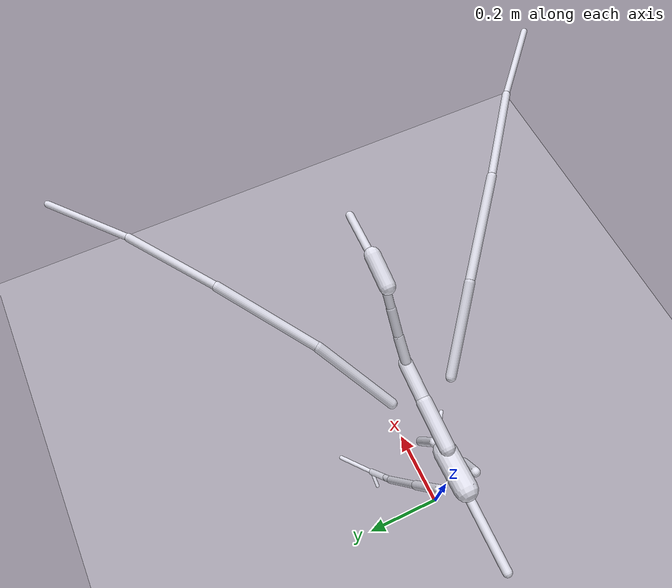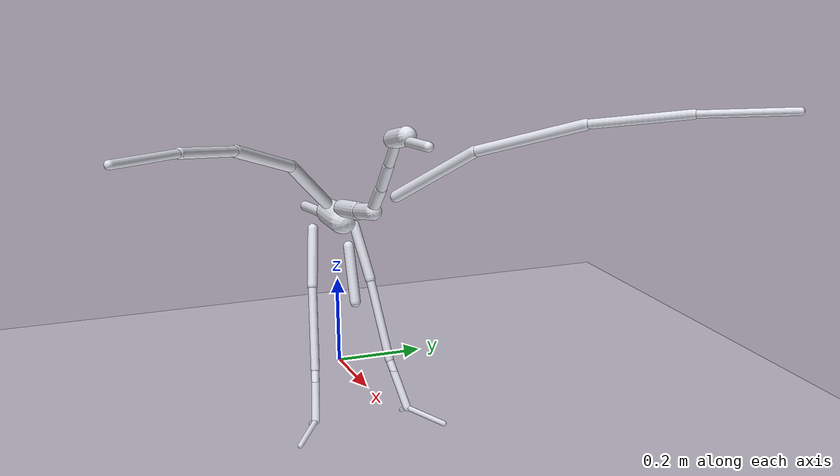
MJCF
<mujoco model="raven_scene">
  <include file="raven_robot.xml"/>

  <visual>
    <global offwidth="3840" offheight="2160" azimuth="90" elevation="-10"/>
    <quality shadowsize="4096" offsamples="16"/>
    <headlight ambient="0.4 0.4 0.4" diffuse="0.8 0.8 0.8" specular="0.1 0.1 0.1"/>
    <map stiffness="1e+04" stiffnessrot="5e+04" force="2e-05"/>
    <scale jointwidth="0.01" framewidth="0.01"/>
  </visual>

  <statistic meansize="0.1" extent="1.2" center="0 0 0.4"/>

  <asset>
    <texture name="grid" type="2d" builtin="checker" rgb1=".1 .2 .3" rgb2=".2 .3 .4" width="300" height="300"
      mark="edge" markrgb=".2 .3 .4"/>
    <material name="grid" texture="grid" texrepeat="1 1" texuniform="true" reflectance=".2"/>
    <texture name="skybox" type="skybox" builtin="gradient" rgb1=".4 .6 .8" rgb2="0 0 0" width="100" height="100"/>
  </asset>

  <worldbody>
    <geom name="floor" type="plane" size="5 5 .1" material="grid" pos="0 0 0" solref="0.0002 1"/>
    <camera name="side_reference" pos="0 -1.6 0.55" xyaxes="1 0 0 0 0 1"/>
  </worldbody>
</mujoco>

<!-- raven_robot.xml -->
<mujoco model="raven_robot">
  <compiler angle="degree" coordinate="local"/>
  <option timestep="0.002" gravity="0 0 -9.81"/>

  <default>
    <geom type="capsule" size="0.015" rgba="0.9 0.9 0.95 1" density="700"/>
    <joint type="hinge" limited="true" damping="1"/>
  </default>

  <worldbody>
    <body name="raven" pos="0 0 0.35">
      <geom name="pelvis_geom" fromto="-0.05 0 0 0.05 0 0" size="0.03"/>

      <body name="tail" pos="-0.05 0 -0.01">
        <joint name="tail_pitch" axis="0 1 0" range="-25 25"/>
        <geom name="tail_geom" fromto="0 0 0 -0.2 0 -0.02" size="0.012"/>
      </body>

      <body name="spine_1" pos="0.05 0 0.03">
        <joint name="spine_1_pitch" axis="0 1 0" range="-15 20"/>
        <geom name="spine_1_geom" fromto="0 0 0 0.12 0 0.02" size="0.02"/>
        <geom name="sternum_keel" fromto="0.04 0 -0.08 0.08 0 -0.2" size="0.012"/>

        <body name="spine_2" pos="0.12 0 0.02">
          <joint name="spine_2_pitch" axis="0 1 0" range="-10 15"/>
          <geom name="spine_2_geom" fromto="0 0 0 0.1 0 0.02" size="0.018"/>

          <body name="neck_1" pos="0.1 0 0.03">
            <joint name="neck_1_pitch" axis="0 1 0" range="-35 35"/>
            <geom name="neck_1_geom" fromto="0 0 0 0.05 0 0.05" size="0.013"/>

            <body name="neck_2" pos="0.05 0 0.05">
              <joint name="neck_2_pitch" axis="0 1 0" range="-35 35"/>
              <geom name="neck_2_geom" fromto="0 0 0 0.05 0 0.06" size="0.012"/>

              <body name="neck_3" pos="0.05 0 0.06">
                <joint name="neck_3_pitch" axis="0 1 0" range="-35 35"/>
                <geom name="neck_3_geom" fromto="0 0 0 0.05 0 0.06" size="0.011"/>

                <body name="head" pos="0.05 0 0.06">
                  <joint name="head_pitch" axis="0 1 0" range="-25 25"/>
                  <geom name="head_geom" fromto="-0.02 0 0 0.06 0 0.02" size="0.02"/>
                  <geom name="beak_geom" fromto="0.06 0 0.01 0.18 0 0.02" size="0.01"/>
                </body>
              </body>
            </body>
          </body>

          <body name="left_shoulder" pos="0.02 0.08 0.03">
            <joint name="left_shoulder_pitch" axis="0 1 0" range="-60 60"/>
            <geom name="left_humerus" fromto="0 0 0 0.16 0.12 0.12" size="0.013"/>

            <body name="left_forearm" pos="0.16 0.12 0.12">
              <joint name="left_elbow_pitch" axis="0 1 0" range="-90 20"/>
              <geom name="left_radius_ulna" fromto="0 0 0 0.2 0.16 0.08" size="0.012"/>

              <body name="left_carpus" pos="0.2 0.16 0.08">
                <joint name="left_carpus_pitch" axis="0 1 0" range="-45 30"/>
                <geom name="left_carpometacarpus" fromto="0 0 0 0.18 0.14 0.04" size="0.01"/>

                <body name="left_digits" pos="0.18 0.14 0.04">
                  <joint name="left_digits_pitch" axis="0 1 0" range="-30 30"/>
                  <geom name="left_digits_geom" fromto="0 0 0 0.15 0.14 0.02" size="0.008"/>
                </body>
              </body>
            </body>
          </body>

          <body name="right_shoulder" pos="0.02 -0.08 0.03">
            <joint name="right_shoulder_pitch" axis="0 1 0" range="-60 60"/>
            <geom name="right_humerus" fromto="0 0 0 0.16 -0.12 0.12" size="0.013"/>

            <body name="right_forearm" pos="0.16 -0.12 0.12">
              <joint name="right_elbow_pitch" axis="0 1 0" range="-90 20"/>
              <geom name="right_radius_ulna" fromto="0 0 0 0.2 -0.16 0.08" size="0.012"/>

              <body name="right_carpus" pos="0.2 -0.16 0.08">
                <joint name="right_carpus_pitch" axis="0 1 0" range="-45 30"/>
                <geom name="right_carpometacarpus" fromto="0 0 0 0.18 -0.14 0.04" size="0.01"/>

                <body name="right_digits" pos="0.18 -0.14 0.04">
                  <joint name="right_digits_pitch" axis="0 1 0" range="-30 30"/>
                  <geom name="right_digits_geom" fromto="0 0 0 0.15 -0.14 0.02" size="0.008"/>
                </body>
              </body>
            </body>
          </body>
        </body>
      </body>

      <body name="left_leg" pos="-0.02 0.05 -0.03">
        <joint name="left_hip_pitch" axis="0 1 0" range="-45 45"/>
        <geom name="left_femur" fromto="0 0 0 0.05 0.02 -0.12" size="0.012"/>

        <body name="left_tibiotarsus" pos="0.05 0.02 -0.12">
          <joint name="left_knee_pitch" axis="0 1 0" range="-90 30"/>
          <geom name="left_tibiotarsus_geom" fromto="0 0 0 0.07 0.02 -0.18" size="0.01"/>

          <body name="left_tarsometatarsus" pos="0.07 0.02 -0.18">
            <joint name="left_ankle_pitch" axis="0 1 0" range="-45 45"/>
            <geom name="left_tarsometatarsus_geom" fromto="0 0 0 0.06 0.02 -0.1" size="0.009"/>

            <body name="left_toes" pos="0.06 0.02 -0.1">
              <joint name="left_toes_pitch" axis="0 1 0" range="-30 30"/>
              <geom name="left_toe_front" fromto="0 0 0 0.08 0.06 -0.02" size="0.006"/>
              <geom name="left_toe_rear" fromto="0 0 0 -0.04 0 -0.02" size="0.005"/>
            </body>
          </body>
        </body>
      </body>

      <body name="right_leg" pos="-0.02 -0.05 -0.03">
        <joint name="right_hip_pitch" axis="0 1 0" range="-45 45"/>
        <geom name="right_femur" fromto="0 0 0 0.05 -0.02 -0.12" size="0.012"/>

        <body name="right_tibiotarsus" pos="0.05 -0.02 -0.12">
          <joint name="right_knee_pitch" axis="0 1 0" range="-90 30"/>
          <geom name="right_tibiotarsus_geom" fromto="0 0 0 0.07 -0.02 -0.18" size="0.01"/>

          <body name="right_tarsometatarsus" pos="0.07 -0.02 -0.18">
            <joint name="right_ankle_pitch" axis="0 1 0" range="-45 45"/>
            <geom name="right_tarsometatarsus_geom" fromto="0 0 0 0.06 -0.02 -0.1" size="0.009"/>

            <body name="right_toes" pos="0.06 -0.02 -0.1">
              <joint name="right_toes_pitch" axis="0 1 0" range="-30 30"/>
              <geom name="right_toe_front" fromto="0 0 0 0.08 -0.06 -0.02" size="0.006"/>
              <geom name="right_toe_rear" fromto="0 0 0 -0.04 0 -0.02" size="0.005"/>
            </body>
          </body>
        </body>
      </body>
    </body>
  </worldbody>

  <actuator>
    <position name="tail_pitch_act" joint="tail_pitch" kp="10"/>
    <position name="spine_1_pitch_act" joint="spine_1_pitch" kp="15"/>
    <position name="spine_2_pitch_act" joint="spine_2_pitch" kp="15"/>
    <position name="neck_1_pitch_act" joint="neck_1_pitch" kp="20"/>
    <position name="neck_2_pitch_act" joint="neck_2_pitch" kp="20"/>
    <position name="neck_3_pitch_act" joint="neck_3_pitch" kp="20"/>
    <position name="head_pitch_act" joint="head_pitch" kp="20"/>

    <position name="left_shoulder_act" joint="left_shoulder_pitch" kp="30"/>
    <position name="left_elbow_act" joint="left_elbow_pitch" kp="25"/>
    <position name="left_carpus_act" joint="left_carpus_pitch" kp="20"/>
    <position name="left_digits_act" joint="left_digits_pitch" kp="15"/>

    <position name="right_shoulder_act" joint="right_shoulder_pitch" kp="30"/>
    <position name="right_elbow_act" joint="right_elbow_pitch" kp="25"/>
    <position name="right_carpus_act" joint="right_carpus_pitch" kp="20"/>
    <position name="right_digits_act" joint="right_digits_pitch" kp="15"/>

    <position name="left_hip_act" joint="left_hip_pitch" kp="25"/>
    <position name="left_knee_act" joint="left_knee_pitch" kp="20"/>
    <position name="left_ankle_act" joint="left_ankle_pitch" kp="15"/>
    <position name="left_toes_act" joint="left_toes_pitch" kp="10"/>

    <position name="right_hip_act" joint="right_hip_pitch" kp="25"/>
    <position name="right_knee_act" joint="right_knee_pitch" kp="20"/>
    <position name="right_ankle_act" joint="right_ankle_pitch" kp="15"/>
    <position name="right_toes_act" joint="right_toes_pitch" kp="10"/>
  </actuator>
</mujoco>
